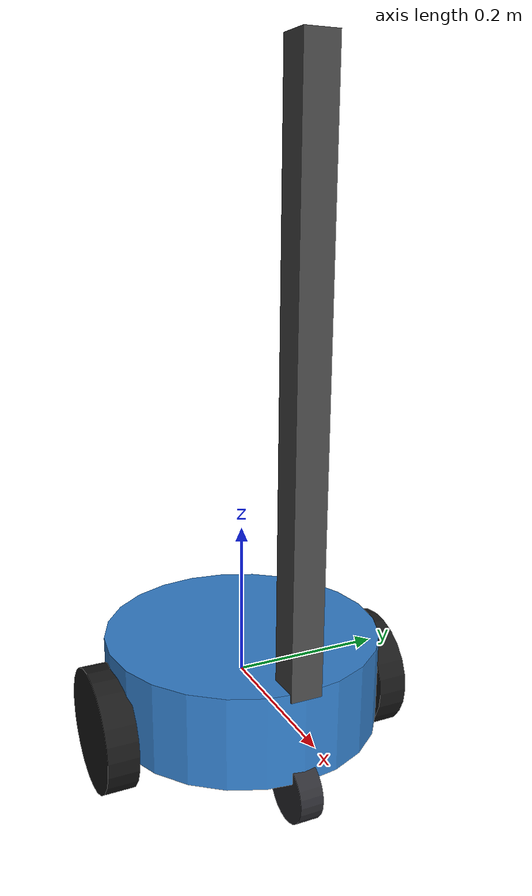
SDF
<?xml version="1.0" ?>
<sdf version="1.6">

  <model name="robot_d456">

    <!-- 본체 -->
    <link name="base_link">
      <inertial>
        <mass>8.0</mass>
        <inertia>
          <ixx>0.2</ixx><ixy>0</ixy><ixz>0</ixz>
          <iyy>0.2</iyy><iyz>0</iyz><izz>0.3</izz>
        </inertia>
      </inertial>

      <collision name="col">
        <geometry>
          <cylinder>
            <radius>0.18</radius>
            <length>0.12</length>
          </cylinder>
        </geometry>
      </collision>

      <visual name="vis">
        <geometry>
          <cylinder>
            <radius>0.18</radius>
            <length>0.12</length>
          </cylinder>
        </geometry>
        <material>
          <ambient>0.2 0.5 0.8 1</ambient>
          <diffuse>0.2 0.5 0.8 1</diffuse>
        </material>
      </visual>

      <!-- D456 카메라 마운트 visual (0~0.8m 사이 막대) -->
      <visual name="cam_mast">
        <pose>0.16 0 0.4 0 0 0</pose>
        <geometry>
          <box>
            <size>0.04 0.04 0.7</size>
          </box>
        </geometry>
        <material>
          <ambient>0.3 0.3 0.3 1</ambient>
          <diffuse>0.3 0.3 0.3 1</diffuse>
        </material>
      </visual>

      <!-- 2D LiDAR — SLAMTEC RPLIDAR C1 spec (robot.sdf와 동일) -->
      <sensor name="lidar" type="ray">
        <pose>0 0 0.1 0 0 0</pose>
        <update_rate>10</update_rate>
        <always_on>true</always_on>
        <visualize>false</visualize>
        <ray>
          <scan>
            <horizontal>
              <samples>500</samples>
              <resolution>1</resolution>
              <min_angle>-3.14159</min_angle>
              <max_angle>3.14159</max_angle>
            </horizontal>
          </scan>
          <range>
            <min>0.05</min>
            <max>12.0</max>
            <resolution>0.015</resolution>
          </range>
          <noise>
            <type>gaussian</type>
            <mean>0.0</mean>
            <stddev>0.03</stddev>
          </noise>
        </ray>
        <plugin name="lidar_ros" filename="libgazebo_ros_ray_sensor.so">
          <ros>
            <namespace>/</namespace>
            <remapping>~/out:=scan</remapping>
          </ros>
          <output_type>sensor_msgs/LaserScan</output_type>
          <frame_name>base_link</frame_name>
        </plugin>
      </sensor>

      <sensor name="d456_camera" type="depth">
        <pose>0.16 0 0.80 0 0 0</pose>
        <update_rate>15</update_rate>
        <always_on>true</always_on>
        <visualize>false</visualize>
        <camera>
          <horizontal_fov>1.518</horizontal_fov>
          <image>
            <width>640</width>
            <height>480</height>
            <format>R8G8B8</format>
          </image>
          <clip>
            <near>0.3</near>
            <far>20.0</far>
          </clip>
          <noise>
            <type>gaussian</type>
            <mean>0.0</mean>
            <stddev>0.005</stddev>
          </noise>
        </camera>
        <plugin name="d456_ros" filename="libgazebo_ros_camera.so">
          <ros>
            <namespace>/</namespace>
            <!-- depth 출력만 /d456/depth/* 로 remap. RGB는 /camera/* 그대로 -->
            <remapping>camera/depth/image_raw:=d456/depth/image_raw</remapping>
            <remapping>camera/depth/camera_info:=d456/depth/camera_info</remapping>
            <remapping>camera/depth/points:=d456/depth/points</remapping>
          </ros>
          <camera_name>camera</camera_name>
          <frame_name>camera_optical_frame</frame_name>
          <min_depth>0.3</min_depth>
          <max_depth>20.0</max_depth>
        </plugin>
      </sensor>
    </link>

    <!-- 왼쪽 바퀴 -->
    <link name="left_wheel">
      <pose>0 0.19 -0.04 -1.5708 0 0</pose>
      <inertial>
        <mass>0.5</mass>
        <inertia>
          <ixx>0.001</ixx><ixy>0</ixy><ixz>0</ixz>
          <iyy>0.001</iyy><iyz>0</iyz><izz>0.001</izz>
        </inertia>
      </inertial>
      <collision name="col">
        <geometry>
          <cylinder>
            <radius>0.08</radius>
            <length>0.04</length>
          </cylinder>
        </geometry>
        <surface>
          <friction>
            <ode>
              <mu>1.0</mu>
              <mu2>0.8</mu2>
            </ode>
          </friction>
        </surface>
      </collision>
      <visual name="vis">
        <geometry>
          <cylinder>
            <radius>0.08</radius>
            <length>0.04</length>
          </cylinder>
        </geometry>
        <material>
          <ambient>0.1 0.1 0.1 1</ambient>
          <diffuse>0.1 0.1 0.1 1</diffuse>
        </material>
      </visual>
    </link>

    <joint name="left_wheel_joint" type="revolute">
      <parent>base_link</parent>
      <child>left_wheel</child>
      <axis>
        <xyz>0 0 1</xyz>
        <limit>
          <lower>-1e16</lower>
          <upper>1e16</upper>
        </limit>
      </axis>
    </joint>

    <!-- 오른쪽 바퀴 -->
    <link name="right_wheel">
      <pose>0 -0.19 -0.04 -1.5708 0 0</pose>
      <inertial>
        <mass>0.5</mass>
        <inertia>
          <ixx>0.001</ixx><ixy>0</ixy><ixz>0</ixz>
          <iyy>0.001</iyy><iyz>0</iyz><izz>0.001</izz>
        </inertia>
      </inertial>
      <collision name="col">
        <geometry>
          <cylinder>
            <radius>0.08</radius>
            <length>0.04</length>
          </cylinder>
        </geometry>
        <surface>
          <friction>
            <ode>
              <mu>1.0</mu>
              <mu2>0.8</mu2>
            </ode>
          </friction>
        </surface>
      </collision>
      <visual name="vis">
        <geometry>
          <cylinder>
            <radius>0.08</radius>
            <length>0.04</length>
          </cylinder>
        </geometry>
        <material>
          <ambient>0.1 0.1 0.1 1</ambient>
          <diffuse>0.1 0.1 0.1 1</diffuse>
        </material>
      </visual>
    </link>

    <joint name="right_wheel_joint" type="revolute">
      <parent>base_link</parent>
      <child>right_wheel</child>
      <axis>
        <xyz>0 0 1</xyz>
        <limit>
          <lower>-1e16</lower>
          <upper>1e16</upper>
        </limit>
      </axis>
    </joint>

    <!-- 앞 보조 캐스터 -->
    <link name="front_caster">
      <pose>0.16 0 -0.08 -1.5708 0 0</pose>
      <inertial>
        <mass>0.10</mass>
        <inertia>
          <ixx>0.0001</ixx><ixy>0</ixy><ixz>0</ixz>
          <iyy>0.0001</iyy><iyz>0</iyz><izz>0.0001</izz>
        </inertia>
      </inertial>
      <collision name="col">
        <geometry>
          <sphere>
            <radius>0.04</radius>
          </sphere>
        </geometry>
        <surface>
          <friction>
            <ode>
              <mu>0.1</mu>
              <mu2>0.1</mu2>
            </ode>
          </friction>
        </surface>
      </collision>
      <visual name="wheel_vis">
        <geometry>
          <cylinder>
            <radius>0.04</radius>
            <length>0.03</length>
          </cylinder>
        </geometry>
        <material>
          <ambient>0.18 0.18 0.20 1</ambient>
          <diffuse>0.18 0.18 0.20 1</diffuse>
          <specular>0.4 0.4 0.4 1</specular>
        </material>
      </visual>
    </link>

    <joint name="front_caster_joint" type="fixed">
      <parent>base_link</parent>
      <child>front_caster</child>
    </joint>

    <!-- 뒤 보조 캐스터 -->
    <link name="rear_caster">
      <pose>-0.16 0 -0.08 -1.5708 0 0</pose>
      <inertial>
        <mass>0.10</mass>
        <inertia>
          <ixx>0.0001</ixx><ixy>0</ixy><ixz>0</ixz>
          <iyy>0.0001</iyy><iyz>0</iyz><izz>0.0001</izz>
        </inertia>
      </inertial>
      <collision name="col">
        <geometry>
          <sphere>
            <radius>0.04</radius>
          </sphere>
        </geometry>
        <surface>
          <friction>
            <ode>
              <mu>0.1</mu>
              <mu2>0.1</mu2>
            </ode>
          </friction>
        </surface>
      </collision>
      <visual name="wheel_vis">
        <geometry>
          <cylinder>
            <radius>0.04</radius>
            <length>0.03</length>
          </cylinder>
        </geometry>
        <material>
          <ambient>0.18 0.18 0.20 1</ambient>
          <diffuse>0.18 0.18 0.20 1</diffuse>
          <specular>0.4 0.4 0.4 1</specular>
        </material>
      </visual>
    </link>

    <joint name="rear_caster_joint" type="fixed">
      <parent>base_link</parent>
      <child>rear_caster</child>
    </joint>

    <!-- Diff Drive -->
    <plugin name="diff_drive" filename="libgazebo_ros_diff_drive.so">
      <ros>
        <namespace>/</namespace>
      </ros>

      <update_rate>50</update_rate>

      <left_joint>left_wheel_joint</left_joint>
      <right_joint>right_wheel_joint</right_joint>

      <wheel_separation>0.38</wheel_separation>
      <wheel_diameter>0.16</wheel_diameter>

      <max_wheel_torque>20</max_wheel_torque>
      <max_wheel_acceleration>5.0</max_wheel_acceleration>

      <command_topic>cmd_vel</command_topic>
      <publish_odom>true</publish_odom>
      <publish_odom_tf>true</publish_odom_tf>
      <publish_wheel_tf>false</publish_wheel_tf>

      <odometry_topic>odom</odometry_topic>
      <odometry_frame>odom</odometry_frame>
      <robot_base_frame>base_link</robot_base_frame>
    </plugin>

    <plugin name="joint_state_publisher" filename="libgazebo_ros_joint_state_publisher.so">
      <ros>
        <namespace>/</namespace>
        <remapping>~/out:=joint_states</remapping>
      </ros>
      <update_rate>30</update_rate>
      <joint_name>left_wheel_joint</joint_name>
      <joint_name>right_wheel_joint</joint_name>
    </plugin>
  </model>
</sdf>
